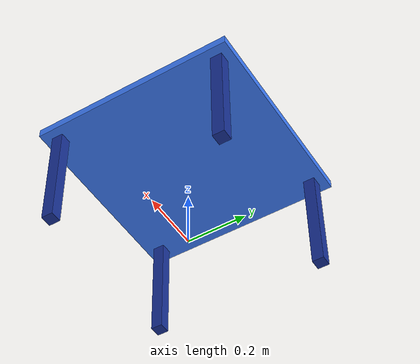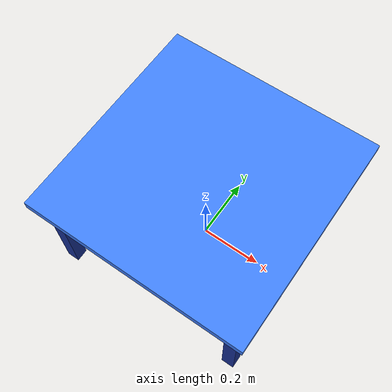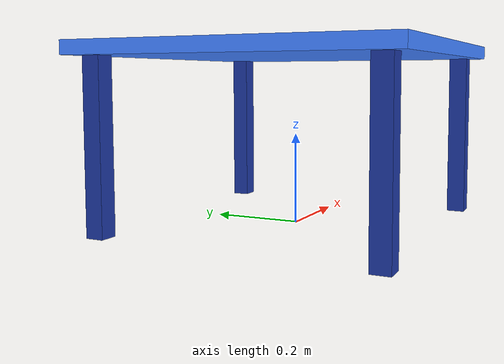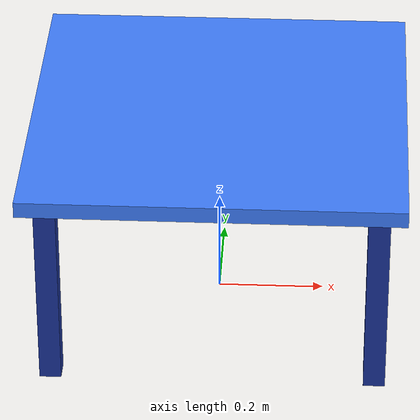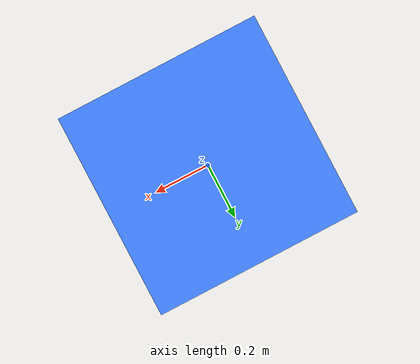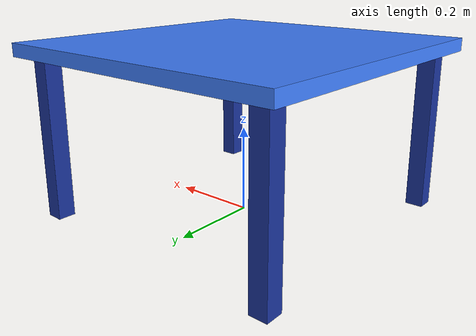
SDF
<?xml version='1.0' encoding='utf-8'?>
<sdf version="1.7">
  <model name="cafe_table">
    <static>true</static>
    <!-- cafe table - 0.7m x 0.7m x 0.40m (top surface) -->

    <!-- top: 0.7x0.7x0.03, top surface z=0.40. light steel blue -->
    <link name="top">
      <pose>0 0 0.385 0 0 0</pose>
      <visual name="top_visual">
        <geometry>
          <box><size>0.7 0.7 0.03</size></box>
        </geometry>
        <material>
          <ambient>0.15 0.35 0.85 1</ambient>
          <diffuse>0.25 0.50 1.00 1</diffuse>
          <specular>0.25 0.25 0.30 1</specular>
        </material>
      </visual>
      <collision name="top_collision">
        <geometry>
          <box><size>0.7 0.7 0.03</size></box>
        </geometry>
      </collision>
    </link>

    <!-- 4 legs - 0.04x0.04x0.37, navy blue metal -->
    <link name="leg_fl">
      <pose>0.3 0.3 0.185 0 0 0</pose>
      <visual name="v"><geometry><box><size>0.04 0.04 0.37</size></box></geometry>
        <material>
          <ambient>0.05 0.10 0.45 1</ambient>
          <diffuse>0.10 0.20 0.60 1</diffuse>
          <specular>0.30 0.30 0.40 1</specular>
        </material>
      </visual>
      <collision name="c"><geometry><box><size>0.04 0.04 0.37</size></box></geometry></collision>
    </link>
    <link name="leg_fr">
      <pose>0.3 -0.3 0.185 0 0 0</pose>
      <visual name="v"><geometry><box><size>0.04 0.04 0.37</size></box></geometry>
        <material>
          <ambient>0.05 0.10 0.45 1</ambient>
          <diffuse>0.10 0.20 0.60 1</diffuse>
          <specular>0.30 0.30 0.40 1</specular>
        </material>
      </visual>
      <collision name="c"><geometry><box><size>0.04 0.04 0.37</size></box></geometry></collision>
    </link>
    <link name="leg_bl">
      <pose>-0.3 0.3 0.185 0 0 0</pose>
      <visual name="v"><geometry><box><size>0.04 0.04 0.37</size></box></geometry>
        <material>
          <ambient>0.05 0.10 0.45 1</ambient>
          <diffuse>0.10 0.20 0.60 1</diffuse>
          <specular>0.30 0.30 0.40 1</specular>
        </material>
      </visual>
      <collision name="c"><geometry><box><size>0.04 0.04 0.37</size></box></geometry></collision>
    </link>
    <link name="leg_br">
      <pose>-0.3 -0.3 0.185 0 0 0</pose>
      <visual name="v"><geometry><box><size>0.04 0.04 0.37</size></box></geometry>
        <material>
          <ambient>0.05 0.10 0.45 1</ambient>
          <diffuse>0.10 0.20 0.60 1</diffuse>
          <specular>0.30 0.30 0.40 1</specular>
        </material>
      </visual>
      <collision name="c"><geometry><box><size>0.04 0.04 0.37</size></box></geometry></collision>
    </link>
  </model>
</sdf>
